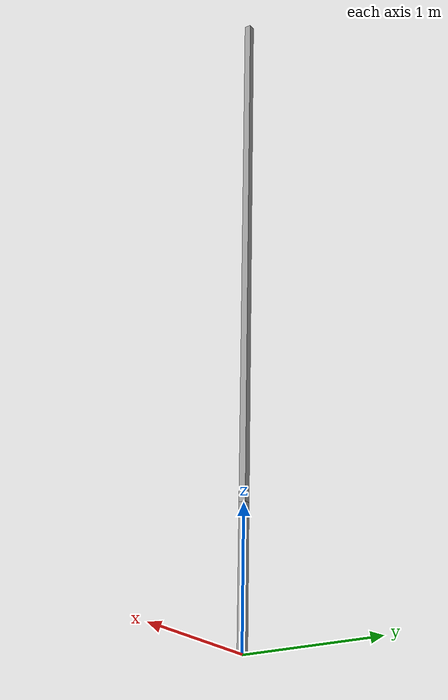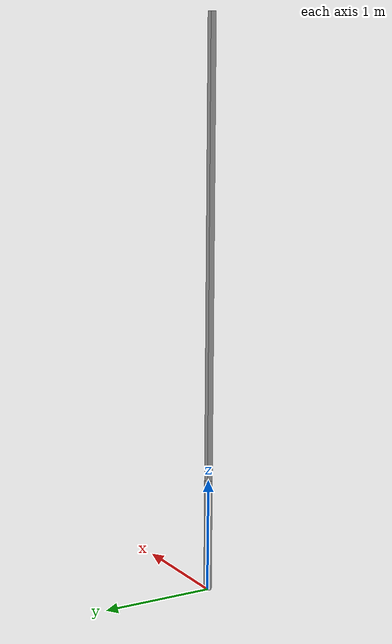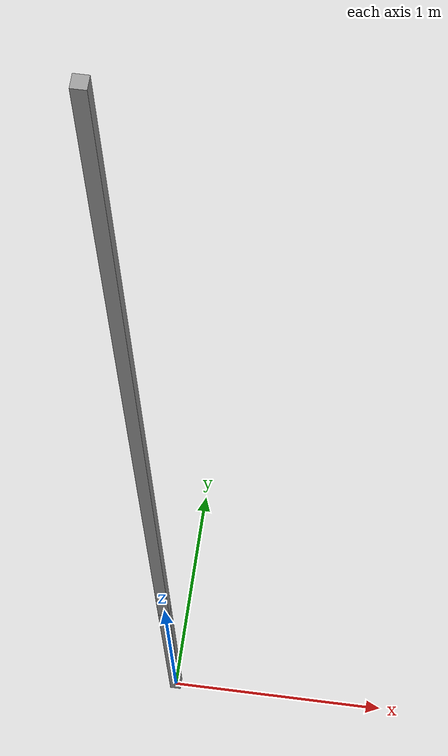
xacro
<?xml version="1.0"?>
<!-- Revolute-Revolute Manipulator -->
<robot name="tracked" xmlns:xacro="http://www.ros.org/wiki/xacro">

  <!-- Constants for robot dimensions -->
  <xacro:property name="PI" value="3.1415926535897931"/>
  <xacro:property name="width" value="0.05" /> <!-- Square dimensions (widthxwidth) of beams -->
  <xacro:property name="height1" value="2" /> <!-- Link 1 -->
  <xacro:property name="height2" value="1" /> <!-- Link 2 -->
  <xacro:property name="height3" value="4" /> <!-- Link 3 -->
  <xacro:property name="mass" value="1" /> <!-- arbitrary value for mass -->

  <!-- Import all Gazebo-customization elements, including Gazebo colors -->
  <xacro:include filename="$(find tracked_description)/urdf/test_arm/test_arm.gazebo" />
  <!-- Import Rviz colors -->
  <xacro:include filename="$(find tracked_description)/urdf/test_arm/materials.xacro" />

  <!-- Used for fixing robot to Gazebo 'base_link' -->
  <link name="world"/>

  <joint name="world2base" type="fixed">
    <parent link="world"/>
    <child link="link2"/>
    <origin xyz="0 0 0" rpy="0 0 0"/>
  </joint>

  <!-- Base Link -->
  <link name="link2">
    <collision>
      <origin xyz="0 0 ${height2/2}" rpy="0 0 0"/>
      <geometry>
	<box size="${width} ${width} ${height2}"/>
      </geometry>
    </collision>

    <visual>
      <origin xyz="0 0 ${height2/2}" rpy="0 0 0"/>
      <geometry>
	<box size="${width} ${width} ${height2}"/>
      </geometry>
      <material name="grey"/>
    </visual>

    <inertial>
      <origin xyz="0 0 ${height2/2}" rpy="0 0 0"/>
      <mass value="${mass}"/>
      <inertia
	  ixx="${mass / 12.0 * (width*width + height2*height2)}" ixy="0.0" ixz="0.0"
	  iyy="${mass / 12.0 * (height2*height2 + width*width)}" iyz="0.0"
	  izz="${mass / 12.0 * (width*width + width*width)}"/>
    </inertial>
  </link>

  <joint name="joint1" type="revolute">
    <parent link="link2"/>
    <child link="link3"/>
    <origin xyz="0 0 ${height2}" rpy="0 0 0"/>
    <axis xyz="0 1 0"/>
    <limit lower="${-PI}" upper="${PI}" effort="10000000" velocity="3" />
    <dynamics damping="0.7"/>
  </joint>

  <!-- Top Link -->
  <link name="link3">
    <collision>
      <origin xyz="0 0 ${height3/2}" rpy="0 0 0"/>
      <geometry>
	<box size="${width} ${width} ${height3}"/>
      </geometry>
    </collision>

    <visual>
      <origin xyz="0 0 ${height3/2}" rpy="0 0 0"/>
      <geometry>
	<box size="${width} ${width} ${height3}"/>
      </geometry>
      <material name="grey"/>
    </visual>

    <inertial>
      <origin xyz="0 0 ${height3/2}" rpy="0 0 0"/>
      <mass value="${mass}"/>
      <inertia
	  ixx="${mass / 12.0 * (width*width + height3*height3)}" ixy="0.0" ixz="0.0"
	  iyy="${mass / 12.0 * (height3*height3 + width*width)}" iyz="0.0"
	  izz="${mass / 12.0 * (width*width + width*width)}"/>
    </inertial>
  </link>

  <transmission name="tran_joint1">
    <type>transmission_interface/SimpleTransmission</type>
    <joint name="joint1">
      <hardwareInterface>PositionJointInterface</hardwareInterface>
    </joint>
    <actuator name="motor_joint1">
      <hardwareInterface>PositionJointInterface</hardwareInterface>
      <mechanicalReduction>1</mechanicalReduction>
    </actuator>
  </transmission>

  <gazebo reference="joint1">
    <provideFeedback>true</provideFeedback>
  </gazebo>

  <gazebo>
    <plugin name="ft_sensor" filename="libgazebo_ros_ft_sensor.so">
      <updateRate>100.0</updateRate>
      <topicName>/test_arm/ft_sensor_joint1</topicName>
      <jointName>joint1</jointName>
    </plugin>
  </gazebo>

</robot>
